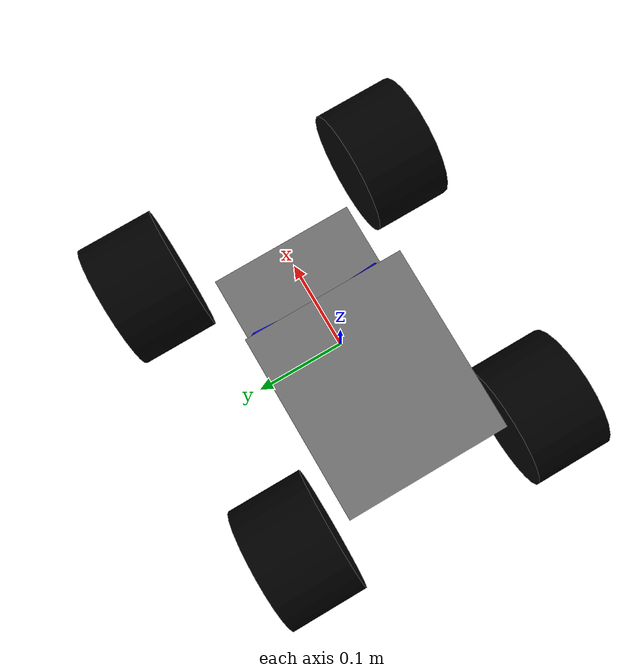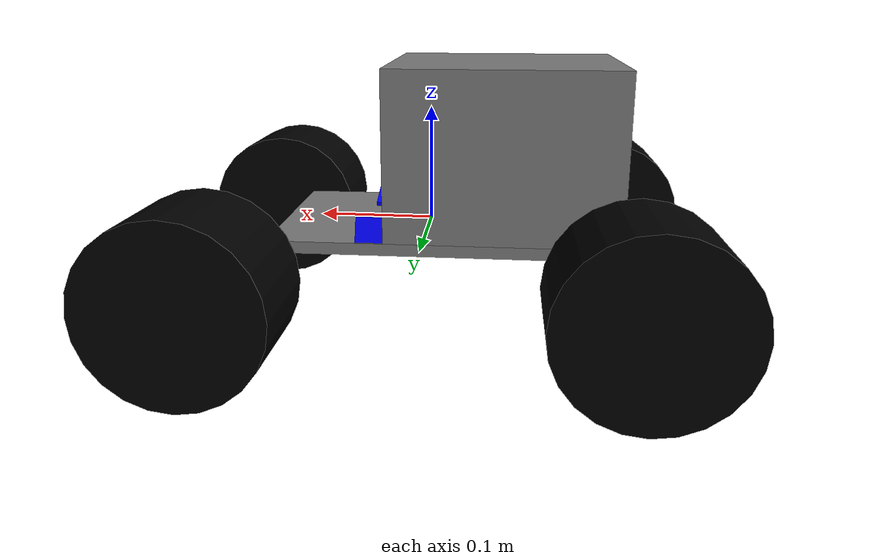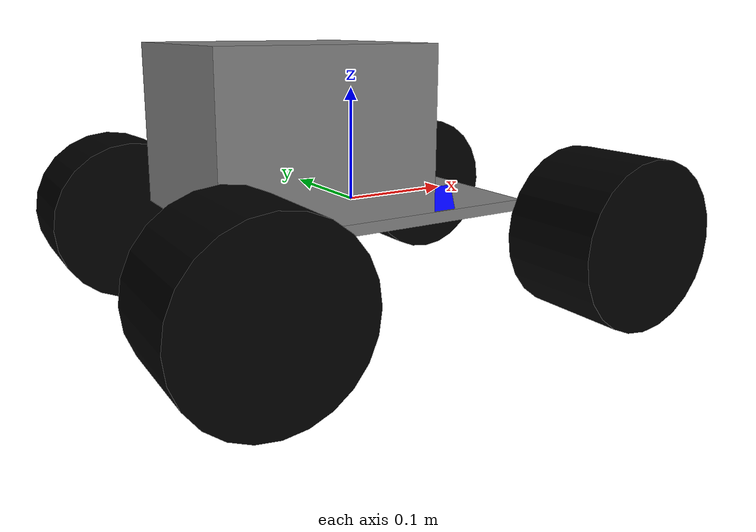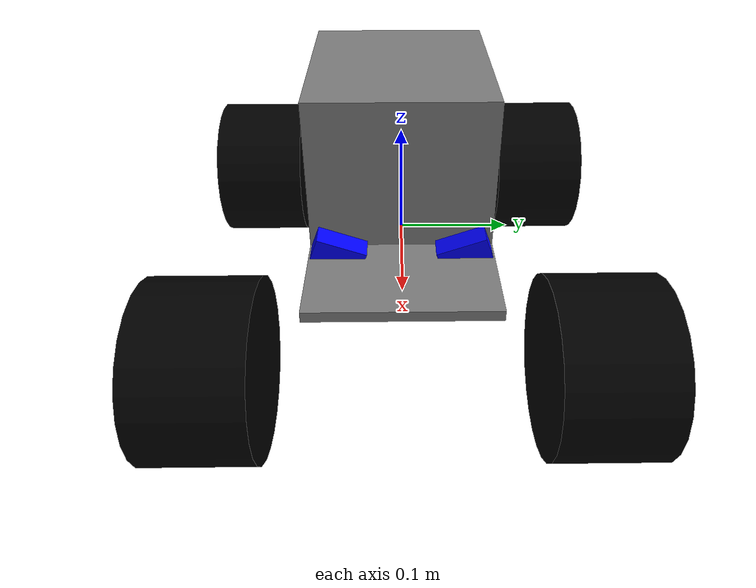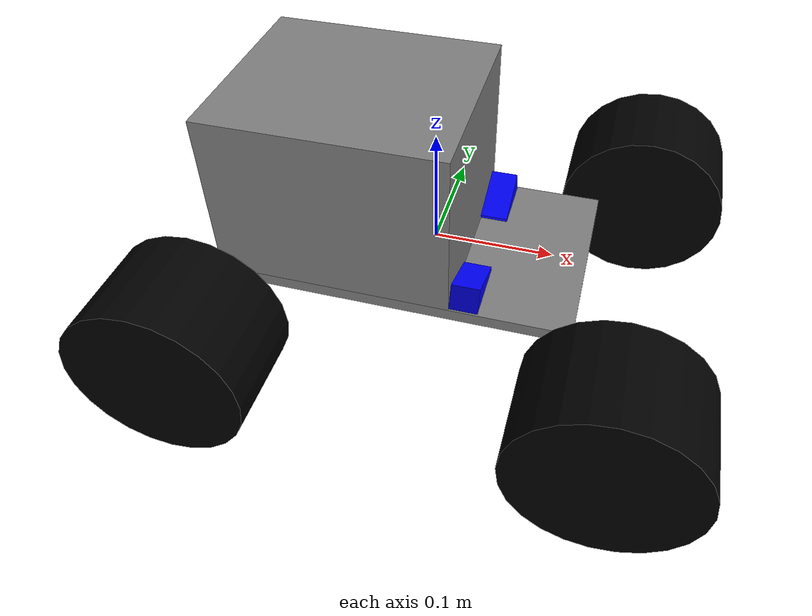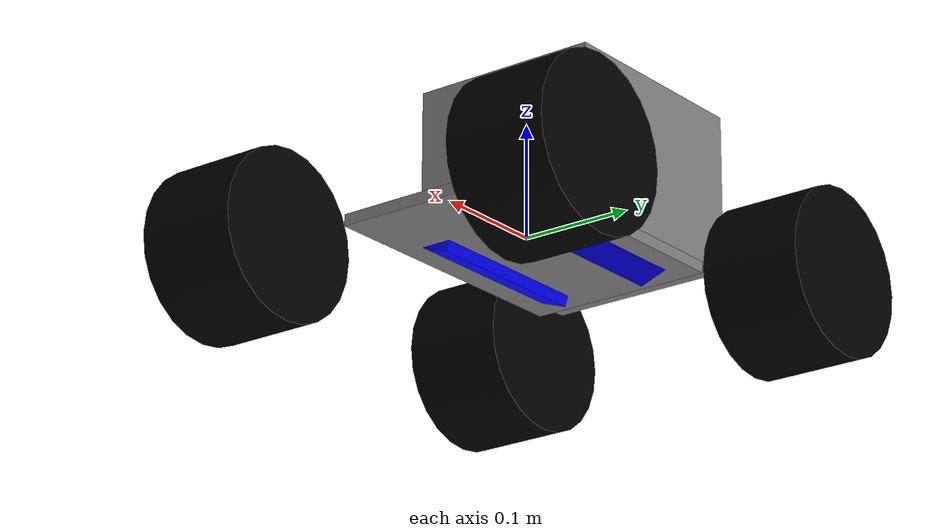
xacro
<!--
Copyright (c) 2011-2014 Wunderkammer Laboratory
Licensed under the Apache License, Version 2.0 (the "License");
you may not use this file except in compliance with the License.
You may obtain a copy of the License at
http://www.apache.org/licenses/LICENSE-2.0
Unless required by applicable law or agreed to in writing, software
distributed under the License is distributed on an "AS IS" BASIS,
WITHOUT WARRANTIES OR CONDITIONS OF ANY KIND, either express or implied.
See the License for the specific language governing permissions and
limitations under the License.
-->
<?xml version="1.0"?>

<robot name="em_3905" xmlns:xacro="http://www.ros.org/wiki/xacro">
  <!-- Degree-to-radian conversions -->
  <xacro:property name="degrees_45" value="0.785398163"/>
  <xacro:property name="degrees_90" value="1.57079633"/>

  <!-- chassis_length is measured along the x axis, chassis_width
       along the y axis, and chassis_height along the z axis. -->
  <xacro:property name="chassis_length" value="0.258"/>
  <xacro:property name="chassis_width" value="0.168"/>
  <xacro:property name="chassis_height" value="0.01"/>
  <xacro:property name="chassis_mass" value="2.788"/>

  <xacro:property name="battery_x_offset" value="0.055"/>
  <xacro:property name="battery_dist" value="0.065"/>
  <xacro:property name="battery_comp_depth" value="0.02"/>
  <xacro:property name="battery_comp_angle" value="0.34906585"/>
  <xacro:property name="battery_length" value="0.16"/>
  <xacro:property name="battery_width" value="0.047"/>
  <xacro:property name="battery_height" value="0.024"/>
  <xacro:property name="battery_mass" value="0.5025"/>

  <xacro:property name="hub_dia" value="0.09652"/>
  <xacro:property name="tire_dia" value="0.14605"/>
  <xacro:property name="tire_width" value="0.0889"/>
  <xacro:property name="hex_hub_depth" value="0.01445"/>
  <xacro:property name="wheel_mass" value="0.29"/>

  <xacro:property name="wheelbase" value="0.335"/>
  <xacro:property name="hex_hub_dist" value="0.365"/>
  <xacro:property name="axle_length" value="0.03"/>
  <xacro:property name="wheel_travel" value="0.084"/>
  <xacro:property name="shock_z_offset" value="0.0655"/>

  <xacro:property name="shock_eff_limit" value="12.5106"/>
  <xacro:property name="shock_vel_limit" value="1000"/>

  <xacro:property name="axle_eff_limit" value="5.12766"/>
  <xacro:property name="axle_vel_limit" value="244.8696"/>

  <!-- These constants are used to simulate a Traxxas 2056 servo operated at
       6 V. servo_stall_torque is measured in N m. servo_no_load_speed is
       measured in rad/s. -->
  <xacro:property name="servo_stall_torque" value="0.5649"/>
  <xacro:property name="servo_no_load_speed" value="4.553"/>

  <material name="battery_mat">
    <color rgba="0 0 1 1"/>
  </material>
  <material name="chassis_mat">
    <color rgba="0.5 0.5 0.5 1"/>
  </material>
  <material name="tire_mat">
    <color rgba="0 0 0 1"/>
  </material>

  <!-- Null inertial element. This is needed to make the model work with
       Gazebo. -->
  <xacro:macro name="null_inertial">
    <inertial>
      <mass value="0.001"/>
      <inertia ixx="0.001" ixy="0" ixz="0" iyy="0.001" iyz="0" izz="0.001"/>
    </inertial>
  </xacro:macro>

  <!-- Inertia of a solid cuboid. Width is measured along the x axis, depth
       along the y axis, and height along the z axis. -->
  <xacro:macro name="solid_cuboid_inertial"
               params="width depth height mass *origin">
    <inertial>
      <xacro:insert_block name="origin"/>
      <mass value="${mass}"/>
      <inertia ixx="${mass * (depth * depth + height * height) / 12}"
               ixy="0" ixz="0"
               iyy="${mass * (width * width + height * height) / 12}"
               iyz="0"
               izz="${mass * (width * width + depth * depth) / 12}"/>
    </inertial>
  </xacro:macro>

  <xacro:macro name="thick_walled_tube_inertial"
               params="inner_rad outer_rad height mass">
    <inertial>
      <mass value="${mass}"/>
      <inertia ixx="${(1 / 12) * mass * (3 * (inner_rad * inner_rad +
                    outer_rad * outer_rad) + height * height)}"
               ixy="0" ixz="0"
               iyy="${(1 / 12) * mass * (3 * (inner_rad * inner_rad +
                    outer_rad * outer_rad) + height * height)}"
               iyz="0"
               izz="${mass * (inner_rad * inner_rad +
                    outer_rad * outer_rad) / 2}"/>
    </inertial>
  </xacro:macro>

  <!-- Battery -->
  <xacro:macro name="battery" params="prefix reflect">
    <joint name="chassis_to_${prefix}_battery" type="fixed">
      <parent link="chassis"/>
      <child link="${prefix}_battery_offset"/>
      <origin xyz="${battery_x_offset - battery_length / 2}
                   ${reflect * battery_dist / 2}
                   0"
              rpy="${reflect * battery_comp_angle} 0 0"/>
    </joint>

    <link name="${prefix}_battery_offset">
      <xacro:null_inertial/>
    </link>

    <joint name="offset_to_${prefix}_battery" type="fixed">
      <parent link="${prefix}_battery_offset"/>
      <child link="${prefix}_battery"/>
      <origin xyz="0
                   ${reflect * battery_width / 2}
                   ${(battery_height / 2) - battery_comp_depth}"/>
    </joint>

    <link name="${prefix}_battery">
      <visual>
        <geometry>
          <box size="${battery_length} ${battery_width} ${battery_height}"/>
        </geometry>
        <material name="battery_mat"/>
      </visual>

      <collision>
        <geometry>
          <box size="${battery_length} ${battery_width} ${battery_height}"/>
        </geometry>
      </collision>

      <xacro:solid_cuboid_inertial
         width="${battery_length}" depth="${battery_width}"
         height="${battery_height}" mass="${battery_mass}">
        <origin/>
      </xacro:solid_cuboid_inertial>
    </link>

    <gazebo reference="${prefix}_battery">
      <material>Gazebo/Blue</material>
    </gazebo>
  </xacro:macro>

  <!-- Shock absorber -->
  <xacro:macro name="shock"
               params="lr_prefix fr_prefix lr_reflect fr_reflect child">
    <joint name="${lr_prefix}_${fr_prefix}_shock" type="prismatic">
      <parent link="chassis"/>
      <child link="${child}"/>

      <origin xyz="${fr_reflect * wheelbase / 2}
                   ${lr_reflect * ((hex_hub_dist / 2) - axle_length)}
                   ${(wheel_travel / 2) - shock_z_offset}"/>
      <axis xyz="0 0 -1"/>
      <limit lower="${-wheel_travel / 2}" upper="${wheel_travel / 2}"
             effort="${shock_eff_limit}" velocity="${shock_vel_limit}"/>
    </joint>
    <transmission name="${lr_prefix}_${fr_prefix}_shock_trans">
      <type>transmission_interface/SimpleTransmission</type>
      <joint name="${lr_prefix}_${fr_prefix}_shock">
        <hardwareInterface>hardware_interface/EffortJointInterface</hardwareInterface>
      </joint>
      <actuator name="${lr_prefix}_${fr_prefix}_shock_act">
        <!-- This hardwareInterface element exists for compatibility
             with ROS Hydro. -->
        <hardwareInterface>hardware_interface/EffortJointInterface</hardwareInterface>
        <mechanicalReduction>1</mechanicalReduction>
      </actuator>
    </transmission>
  </xacro:macro>

  <!-- The "wheel" macro defines an axle carrier, axle, and wheel. -->
  <xacro:macro name="wheel" params="lr_prefix fr_prefix lr_reflect">
    <link name="${lr_prefix}_${fr_prefix}_axle_carrier">
      <xacro:null_inertial/>
    </link>

    <!-- The left and right axles have the same axis so that identical
         rotation values cause the wheels to rotate in the same direction. -->
    <joint name="${lr_prefix}_${fr_prefix}_axle" type="continuous">
      <parent link="${lr_prefix}_${fr_prefix}_axle_carrier"/>
      <child link="${lr_prefix}_${fr_prefix}_wheel"/>
      <origin rpy="${degrees_90} 0 0"/>
      <axis xyz="0 0 -1"/>
      <limit effort="${axle_eff_limit}" velocity="${axle_vel_limit}"/>
    </joint>
    <transmission name="${lr_prefix}_${fr_prefix}_axle_trans">
      <type>transmission_interface/SimpleTransmission</type>
      <joint name="${lr_prefix}_${fr_prefix}_axle">
        <hardwareInterface>hardware_interface/EffortJointInterface</hardwareInterface>
      </joint>
      <actuator name="${lr_prefix}_${fr_prefix}_axle_act">
        <!-- This hardwareInterface element exists for compatibility
             with ROS Hydro. -->
        <hardwareInterface>hardware_interface/EffortJointInterface</hardwareInterface>
        <mechanicalReduction>1</mechanicalReduction>
      </actuator>
    </transmission>

    <link name="${lr_prefix}_${fr_prefix}_wheel">
      <visual>
        <origin xyz="0
                     ${lr_reflect * (axle_length - (tire_width /
                     2 - hex_hub_depth))}
                     0"/>
        <geometry>
          <cylinder radius="${tire_dia / 2}" length="${tire_width}"/>
        </geometry>
        <material name="tire_mat"/>
      </visual>

      <collision>
        <origin xyz="0
                     ${lr_reflect * (axle_length - (tire_width /
                     2 - hex_hub_depth))}
                     0"/>
        <geometry>
          <cylinder radius="${tire_dia / 2}" length="${tire_width}"/>
        </geometry>
      </collision>

      <xacro:thick_walled_tube_inertial
          inner_rad="${hub_dia / 2}" outer_rad="${tire_dia / 2}"
          height="${tire_width}" mass="${wheel_mass}"/>
    </link>

    <gazebo reference="${lr_prefix}_${fr_prefix}_wheel">
      <material>Gazebo/Black</material>
    </gazebo>
  </xacro:macro>

  <!-- Front wheel -->
  <xacro:macro name="front_wheel"
               params="lr_prefix fr_prefix lr_reflect fr_reflect">
    <xacro:shock lr_prefix="${lr_prefix}" fr_prefix="${fr_prefix}"
                 lr_reflect="${lr_reflect}" fr_reflect="${fr_reflect}"
                 child="${lr_prefix}_steering_link"/>

    <link name="${lr_prefix}_steering_link">
      <xacro:null_inertial/>
    </link>

    <joint name="${lr_prefix}_steering_joint" type="revolute">
      <parent link="${lr_prefix}_steering_link"/>
      <child link="${lr_prefix}_${fr_prefix}_axle_carrier"/>
      <axis xyz="0 0 1"/>
      <limit lower="${-degrees_45}" upper="${degrees_45}"
             effort="${servo_stall_torque}" velocity="${servo_no_load_speed}"/>
    </joint>
    <transmission name="${lr_prefix}_steering_trans">
      <type>transmission_interface/SimpleTransmission</type>
      <joint name="${lr_prefix}_steering_joint">
        <hardwareInterface>hardware_interface/EffortJointInterface</hardwareInterface>
      </joint>
      <actuator name="${lr_prefix}_steering_act">
        <!-- This hardwareInterface element exists for compatibility
             with ROS Hydro. -->
        <hardwareInterface>hardware_interface/EffortJointInterface</hardwareInterface>
        <mechanicalReduction>1</mechanicalReduction>
      </actuator>
    </transmission>

    <xacro:wheel lr_prefix="${lr_prefix}" fr_prefix="${fr_prefix}"
                 lr_reflect="${lr_reflect}"/>
  </xacro:macro>

  <!-- Rear wheel -->
  <xacro:macro name="rear_wheel"
               params="lr_prefix fr_prefix lr_reflect fr_reflect">
    <xacro:shock lr_prefix="${lr_prefix}" fr_prefix="${fr_prefix}"
                 lr_reflect="${lr_reflect}" fr_reflect="${fr_reflect}"
                 child="${lr_prefix}_${fr_prefix}_axle_carrier"/>
    <xacro:wheel lr_prefix="${lr_prefix}" fr_prefix="${fr_prefix}"
                 lr_reflect="${lr_reflect}"/>
  </xacro:macro>

  <!-- base_link must have geometry so that its axes can be displayed in
       rviz. -->
  <link name="base_link">
    <visual>
      <geometry>
        <box size="0.01 0.01 0.01"/>
      </geometry>
      <material name="chassis_mat"/>
    </visual>
  </link>
  <gazebo reference="base_link">
    <material>Gazebo/Grey</material>
  </gazebo>

  <!-- Chassis -->
  <link name="chassis">
    <visual>
      <origin xyz="0 0 ${-chassis_height / 2}"/>
      <geometry>
        <box size="${chassis_length} ${chassis_width} ${chassis_height}"/>
      </geometry>
      <material name="chassis_mat"/>
    </visual>

    <collision>
      <origin xyz="0 0 ${-chassis_height / 2}"/>
      <geometry>
        <box size="${chassis_length} ${chassis_width} ${chassis_height}"/>
      </geometry>
    </collision>

    <xacro:solid_cuboid_inertial
        width="${chassis_length}" depth="${chassis_width}"
        height="${chassis_height}" mass="${chassis_mass}">
      <origin xyz="0 0 ${-chassis_height / 2}"/>
    </xacro:solid_cuboid_inertial>
  </link>
  <gazebo reference="chassis">
    <material>Gazebo/Grey</material>
  </gazebo>

  <joint name="base_link_to_chassis" type="fixed">
    <parent link="base_link"/>
    <child link="chassis"/>
  </joint>

  <!-- Roof -->
  <link name="roof">
    <visual>
      <origin xyz="-0.064 0 0.07"/>
      <geometry>
        <box size="0.192 ${chassis_width} 0.14"/>
      </geometry>
      <material name="chassis_mat"/>
    </visual>

    <collision>
      <origin xyz="0 0 0.07"/>
      <geometry>
        <box size="${chassis_length} ${chassis_width} 0.14"/>
      </geometry>
    </collision>

    <xacro:solid_cuboid_inertial
        width="${chassis_length}" depth="${chassis_width}"
        height="0.14" mass="${chassis_mass}">
      <origin xyz="0 0 0.07"/>
    </xacro:solid_cuboid_inertial>
  </link>
  <gazebo reference="chassis">
    <material>Gazebo/Grey</material>
  </gazebo>

  <joint name="chassis_to_roof" type="fixed">
    <parent link="chassis"/>
    <child link="roof"/>
  </joint>

  <!-- Batteries -->
  <xacro:battery prefix="left" reflect="1"/>
  <xacro:battery prefix="right" reflect="-1"/>

  <!-- Wheels -->
  <xacro:front_wheel lr_prefix="left" fr_prefix="front"
                     lr_reflect="1" fr_reflect="1"/>
  <xacro:front_wheel lr_prefix="right" fr_prefix="front"
                     lr_reflect="-1" fr_reflect="1"/>
  <xacro:rear_wheel lr_prefix="left" fr_prefix="rear"
                    lr_reflect="1" fr_reflect="-1"/>
  <xacro:rear_wheel lr_prefix="right" fr_prefix="rear"
                    lr_reflect="-1" fr_reflect="-1"/>

  <gazebo>
    <plugin name="gazebo_ros_control" filename="libgazebo_ros_control.so"/>
  </gazebo>

  <xacro:arg name="camera_visual" default="false"/>

  <joint name="camera_joint" type="fixed">
    <origin xyz="-0.173 0.000 0.200" rpy="0 -0.05 0"/>
    <parent link="base_link"/>
    <child link="camera_link"/>
  </joint>

  <link name="camera_link">
    <collision>
      <origin xyz="0.005 0.000 0.013" rpy="0 0 0"/>
      <geometry>
        <box size="0.015 0.030 0.027"/>
      </geometry>
    </collision>
  </link>

  <joint name="camera_rgb_joint" type="fixed">
    <origin xyz="0.003 0.000 0.009" rpy="0 0 0"/>
    <parent link="camera_link"/>
    <child link="camera_rgb_frame"/>
  </joint>
  <link name="camera_rgb_frame"/>

  <joint name="camera_rgb_optical_joint" type="fixed">
    <origin xyz="0 0 0" rpy="-1.57 0 -1.57"/>
    <parent link="camera_rgb_frame"/>
    <child link="camera_rgb_optical_frame"/>
  </joint>
  <link name="camera_rgb_optical_frame"/>

  <gazebo reference="camera_rgb_frame">
    <sensor type="camera" name="Pi Camera">
      <always_on>true</always_on>
      <visualize>$(arg camera_visual)</visualize>
      <camera>
          <horizontal_fov>1.085595</horizontal_fov>
          <image>
              <width>640</width>
              <height>480</height>
              <format>R8G8B8</format>
          </image>
          <clip>
              <near>0.03</near>
              <far>500</far>
          </clip>
      </camera>
      <plugin name="camera_controller" filename="libgazebo_ros_camera.so">
        <alwaysOn>true</alwaysOn>
        <updateRate>30.0</updateRate>
        <cameraName>camera</cameraName>
        <frameName>camera_rgb_optical_frame</frameName>
        <imageTopicName>rgb/image_raw</imageTopicName>
        <cameraInfoTopicName>rgb/camera_info</cameraInfoTopicName>
        <hackBaseline>0.07</hackBaseline>
        <distortionK1>0.0</distortionK1>
        <distortionK2>0.0</distortionK2>
        <distortionK3>0.0</distortionK3>
        <distortionT1>0.0</distortionT1>
        <distortionT2>0.0</distortionT2>
      </plugin>
    </sensor>
  </gazebo>

</robot>
